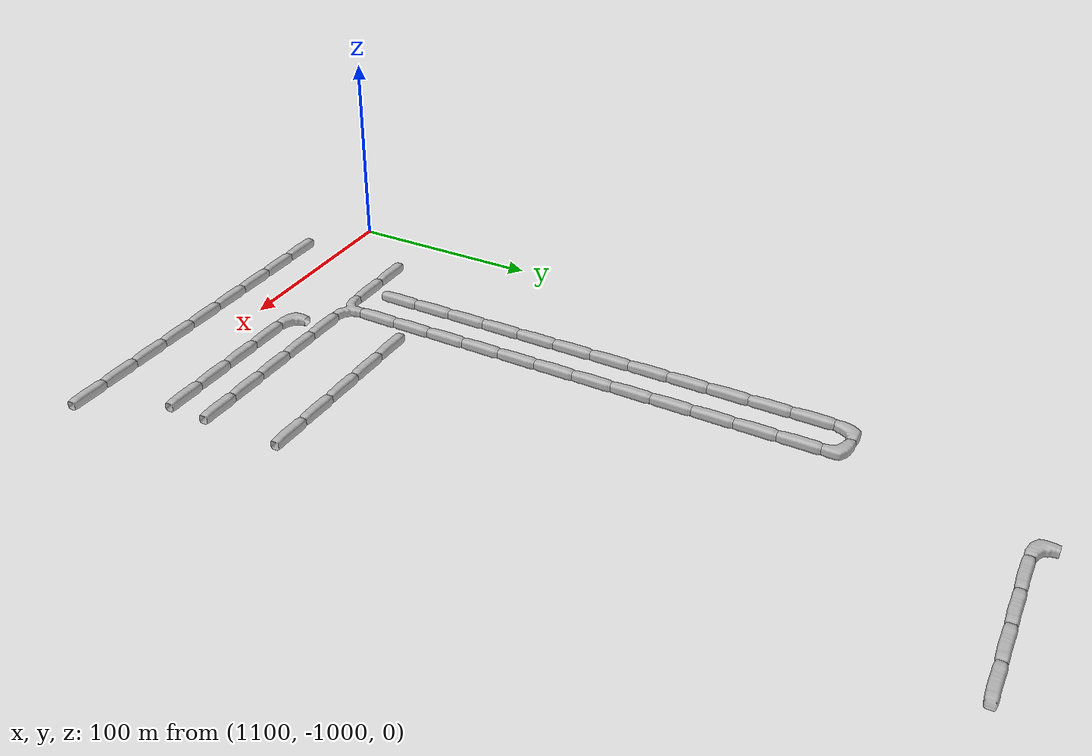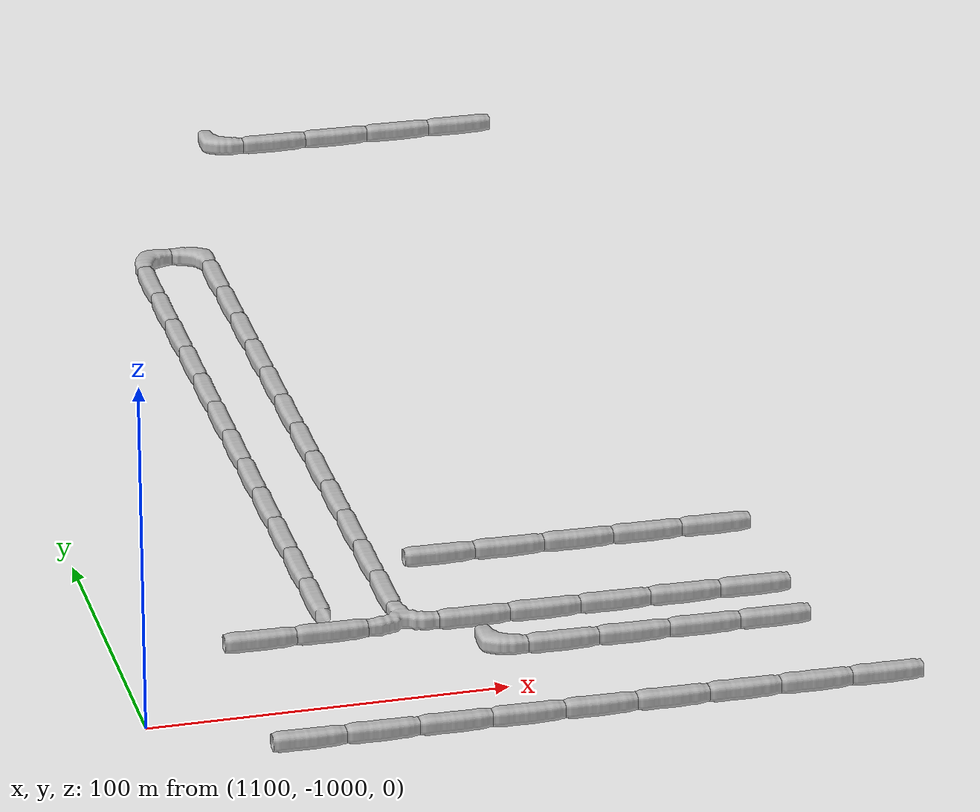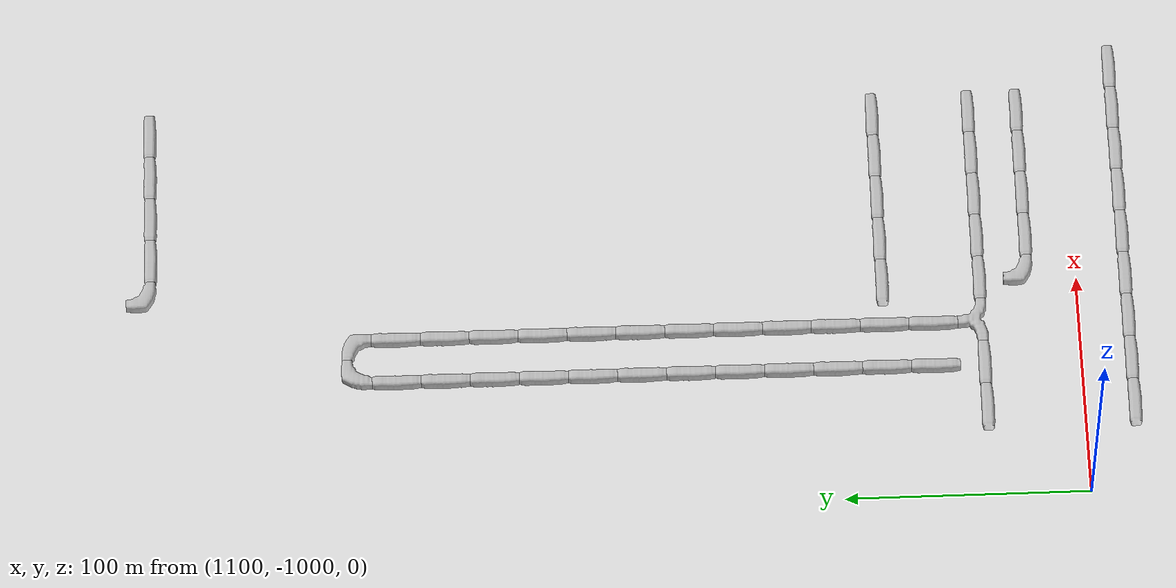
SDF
<sdf version="1.6">
 <world name="cave_32000_0">
  <include>
   <static>true</static>
   <name>cave_57_-48</name>
   <pose>1140 -960 0 0 0 1.5707963267948966</pose>
   <uri>model://cave_straight_20m</uri>
  </include>
  <include>
   <static>true</static>
   <name>cave_58_-48</name>
   <pose>1160 -960 0 0 0 1.5707963267948966</pose>
   <uri>model://cave_straight_20m</uri>
  </include>
  <include>
   <static>true</static>
   <name>cave_59_-48</name>
   <pose>1180 -960 0 0 0 0.0</pose>
   <uri>model://cave_3way_20m</uri>
  </include>
  <include>
   <static>true</static>
   <name>cave_60_-48</name>
   <pose>1200 -960 0 0 0 1.5707963267948966</pose>
   <uri>model://cave_straight_20m</uri>
  </include>
  <include>
   <static>true</static>
   <name>cave_61_-48</name>
   <pose>1220 -960 0 0 0 1.5707963267948966</pose>
   <uri>model://cave_straight_20m</uri>
  </include>
  <include>
   <static>true</static>
   <name>cave_62_-48</name>
   <pose>1240 -960 0 0 0 1.5707963267948966</pose>
   <uri>model://cave_straight_20m</uri>
  </include>
  <include>
   <static>true</static>
   <name>cave_63_-48</name>
   <pose>1260 -960 0 0 0 1.5707963267948966</pose>
   <uri>model://cave_straight_20m</uri>
  </include>
  <include>
   <static>true</static>
   <name>cave_64_-48</name>
   <pose>1280 -960 0 0 0 1.5707963267948966</pose>
   <uri>model://cave_straight_20m</uri>
  </include>
  <include>
   <static>true</static>
   <name>cave_64_-49</name>
   <pose>1280 -980 0 0 0 1.5707963267948966</pose>
   <uri>model://cave_straight_20m</uri>
  </include>
  <include>
   <static>true</static>
   <name>cave_63_-49</name>
   <pose>1260 -980 0 0 0 1.5707963267948966</pose>
   <uri>model://cave_straight_20m</uri>
  </include>
  <include>
   <static>true</static>
   <name>cave_62_-49</name>
   <pose>1240 -980 0 0 0 1.5707963267948966</pose>
   <uri>model://cave_straight_20m</uri>
  </include>
  <include>
   <static>true</static>
   <name>cave_61_-49</name>
   <pose>1220 -980 0 0 0 1.5707963267948966</pose>
   <uri>model://cave_straight_20m</uri>
  </include>
  <include>
   <static>true</static>
   <name>cave_60_-49</name>
   <pose>1200 -980 0 0 0 0.0</pose>
   <uri>model://cave_L_20m</uri>
  </include>
  <include>
   <static>true</static>
   <name>cave_64_-46</name>
   <pose>1280 -920 0 0 0 1.5707963267948966</pose>
   <uri>model://cave_straight_20m</uri>
  </include>
  <include>
   <static>true</static>
   <name>cave_63_-46</name>
   <pose>1260 -920 0 0 0 1.5707963267948966</pose>
   <uri>model://cave_straight_20m</uri>
  </include>
  <include>
   <static>true</static>
   <name>cave_62_-46</name>
   <pose>1240 -920 0 0 0 1.5707963267948966</pose>
   <uri>model://cave_straight_20m</uri>
  </include>
  <include>
   <static>true</static>
   <name>cave_61_-46</name>
   <pose>1220 -920 0 0 0 1.5707963267948966</pose>
   <uri>model://cave_straight_20m</uri>
  </include>
  <include>
   <static>true</static>
   <name>cave_60_-46</name>
   <pose>1200 -920 0 0 0 1.5707963267948966</pose>
   <uri>model://cave_straight_20m</uri>
  </include>
  <include>
   <static>true</static>
   <name>cave_59_-47</name>
   <pose>1180 -940 0 0 0 0.0</pose>
   <uri>model://cave_straight_20m</uri>
  </include>
  <include>
   <static>true</static>
   <name>cave_59_-46</name>
   <pose>1180 -920 0 0 0 0.0</pose>
   <uri>model://cave_straight_20m</uri>
  </include>
  <include>
   <static>true</static>
   <name>cave_59_-45</name>
   <pose>1180 -900 0 0 0 0.0</pose>
   <uri>model://cave_straight_20m</uri>
  </include>
  <include>
   <static>true</static>
   <name>cave_59_-44</name>
   <pose>1180 -880 0 0 0 0.0</pose>
   <uri>model://cave_straight_20m</uri>
  </include>
  <include>
   <static>true</static>
   <name>cave_59_-43</name>
   <pose>1180 -860 0 0 0 0.0</pose>
   <uri>model://cave_straight_20m</uri>
  </include>
  <include>
   <static>true</static>
   <name>cave_59_-42</name>
   <pose>1180 -840 0 0 0 0.0</pose>
   <uri>model://cave_straight_20m</uri>
  </include>
  <include>
   <static>true</static>
   <name>cave_59_-41</name>
   <pose>1180 -820 0 0 0 0.0</pose>
   <uri>model://cave_straight_20m</uri>
  </include>
  <include>
   <static>true</static>
   <name>cave_59_-40</name>
   <pose>1180 -800 0 0 0 0.0</pose>
   <uri>model://cave_straight_20m</uri>
  </include>
  <include>
   <static>true</static>
   <name>cave_59_-39</name>
   <pose>1180 -780 0 0 0 0.0</pose>
   <uri>model://cave_straight_20m</uri>
  </include>
  <include>
   <static>true</static>
   <name>cave_59_-38</name>
   <pose>1180 -760 0 0 0 0.0</pose>
   <uri>model://cave_straight_20m</uri>
  </include>
  <include>
   <static>true</static>
   <name>cave_59_-37</name>
   <pose>1180 -740 0 0 0 0.0</pose>
   <uri>model://cave_straight_20m</uri>
  </include>
  <include>
   <static>true</static>
   <name>cave_59_-36</name>
   <pose>1180 -720 0 0 0 0.0</pose>
   <uri>model://cave_straight_20m</uri>
  </include>
  <include>
   <static>true</static>
   <name>cave_59_-35</name>
   <pose>1180 -700 0 0 0 3.141592653589793</pose>
   <uri>model://cave_L_20m</uri>
  </include>
  <include>
   <static>true</static>
   <name>cave_58_-35</name>
   <pose>1160 -700 0 0 0 -1.5707963267948966</pose>
   <uri>model://cave_L_20m</uri>
  </include>
  <include>
   <static>true</static>
   <name>cave_58_-36</name>
   <pose>1160 -720 0 0 0 0.0</pose>
   <uri>model://cave_straight_20m</uri>
  </include>
  <include>
   <static>true</static>
   <name>cave_58_-37</name>
   <pose>1160 -740 0 0 0 0.0</pose>
   <uri>model://cave_straight_20m</uri>
  </include>
  <include>
   <static>true</static>
   <name>cave_58_-38</name>
   <pose>1160 -760 0 0 0 0.0</pose>
   <uri>model://cave_straight_20m</uri>
  </include>
  <include>
   <static>true</static>
   <name>cave_58_-39</name>
   <pose>1160 -780 0 0 0 0.0</pose>
   <uri>model://cave_straight_20m</uri>
  </include>
  <include>
   <static>true</static>
   <name>cave_58_-40</name>
   <pose>1160 -800 0 0 0 0.0</pose>
   <uri>model://cave_straight_20m</uri>
  </include>
  <include>
   <static>true</static>
   <name>cave_58_-41</name>
   <pose>1160 -820 0 0 0 0.0</pose>
   <uri>model://cave_straight_20m</uri>
  </include>
  <include>
   <static>true</static>
   <name>cave_58_-42</name>
   <pose>1160 -840 0 0 0 0.0</pose>
   <uri>model://cave_straight_20m</uri>
  </include>
  <include>
   <static>true</static>
   <name>cave_58_-43</name>
   <pose>1160 -860 0 0 0 0.0</pose>
   <uri>model://cave_straight_20m</uri>
  </include>
  <include>
   <static>true</static>
   <name>cave_58_-44</name>
   <pose>1160 -880 0 0 0 0.0</pose>
   <uri>model://cave_straight_20m</uri>
  </include>
  <include>
   <static>true</static>
   <name>cave_58_-45</name>
   <pose>1160 -900 0 0 0 0.0</pose>
   <uri>model://cave_straight_20m</uri>
  </include>
  <include>
   <static>true</static>
   <name>cave_58_-46</name>
   <pose>1160 -920 0 0 0 0.0</pose>
   <uri>model://cave_straight_20m</uri>
  </include>
  <include>
   <static>true</static>
   <name>cave_58_-47</name>
   <pose>1160 -940 0 0 0 0.0</pose>
   <uri>model://cave_straight_20m</uri>
  </include>
  <include>
   <static>true</static>
   <name>cave_57_-51</name>
   <pose>1140 -1020 0 0 0 1.5707963267948966</pose>
   <uri>model://cave_straight_20m</uri>
  </include>
  <include>
   <static>true</static>
   <name>cave_58_-51</name>
   <pose>1160 -1020 0 0 0 1.5707963267948966</pose>
   <uri>model://cave_straight_20m</uri>
  </include>
  <include>
   <static>true</static>
   <name>cave_59_-51</name>
   <pose>1180 -1020 0 0 0 1.5707963267948966</pose>
   <uri>model://cave_straight_20m</uri>
  </include>
  <include>
   <static>true</static>
   <name>cave_60_-51</name>
   <pose>1200 -1020 0 0 0 1.5707963267948966</pose>
   <uri>model://cave_straight_20m</uri>
  </include>
  <include>
   <static>true</static>
   <name>cave_61_-51</name>
   <pose>1220 -1020 0 0 0 1.5707963267948966</pose>
   <uri>model://cave_straight_20m</uri>
  </include>
  <include>
   <static>true</static>
   <name>cave_62_-51</name>
   <pose>1240 -1020 0 0 0 1.5707963267948966</pose>
   <uri>model://cave_straight_20m</uri>
  </include>
  <include>
   <static>true</static>
   <name>cave_63_-51</name>
   <pose>1260 -1020 0 0 0 1.5707963267948966</pose>
   <uri>model://cave_straight_20m</uri>
  </include>
  <include>
   <static>true</static>
   <name>cave_64_-51</name>
   <pose>1280 -1020 0 0 0 1.5707963267948966</pose>
   <uri>model://cave_straight_20m</uri>
  </include>
  <include>
   <static>true</static>
   <name>cave_65_-51</name>
   <pose>1300 -1020 0 0 0 1.5707963267948966</pose>
   <uri>model://cave_straight_20m</uri>
  </include>
  <include>
   <static>true</static>
   <name>cave_60_-31</name>
   <pose>1200 -620 0 0 0 0.0</pose>
   <uri>model://cave_L_20m</uri>
  </include>
  <include>
   <static>true</static>
   <name>cave_61_-31</name>
   <pose>1220 -620 0 0 0 1.5707963267948966</pose>
   <uri>model://cave_straight_20m</uri>
  </include>
  <include>
   <static>true</static>
   <name>cave_62_-31</name>
   <pose>1240 -620 0 0 0 1.5707963267948966</pose>
   <uri>model://cave_straight_20m</uri>
  </include>
  <include>
   <static>true</static>
   <name>cave_63_-31</name>
   <pose>1260 -620 0 0 0 1.5707963267948966</pose>
   <uri>model://cave_straight_20m</uri>
  </include>
  <include>
   <static>true</static>
   <name>cave_64_-31</name>
   <pose>1280 -620 0 0 0 1.5707963267948966</pose>
   <uri>model://cave_straight_20m</uri>
  </include>
 </world>
</sdf>
